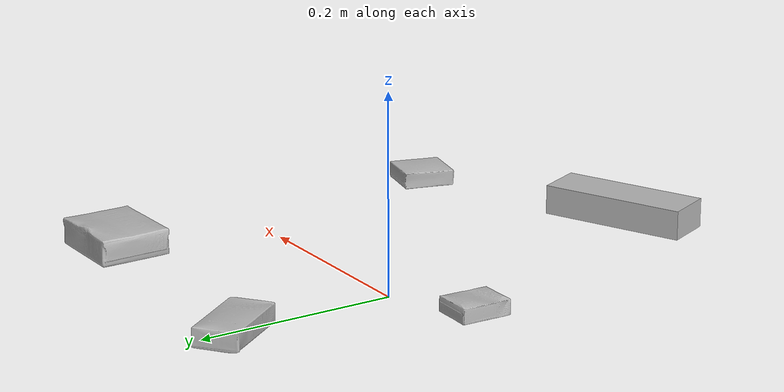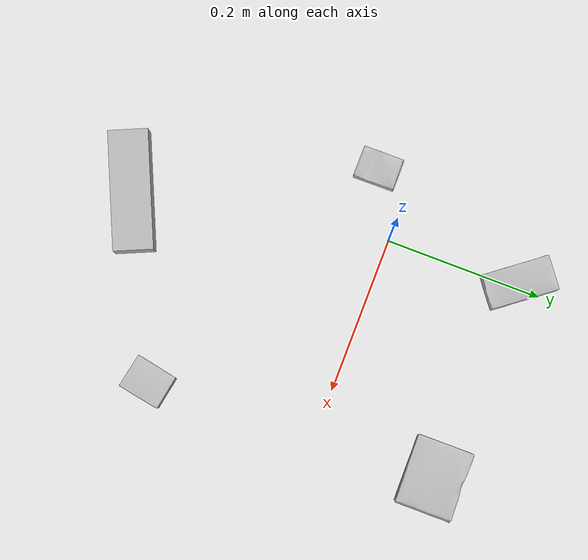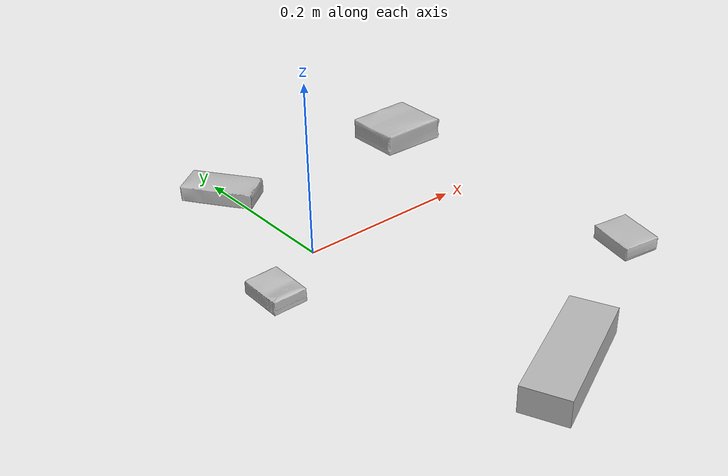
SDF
<sdf version="1.4">
  <world name="default">
    <light name="light1" type="point">
      <pose>0 0 1 0 0 0</pose>
      <diffuse>3 3 3 1</diffuse>
      <specular>3 3 3 1</specular>
    </light>
    <light name="light2" type="point">
      <pose>0 0.5 2 0 0 0</pose>
      <diffuse>1 1 1 1</diffuse>
      <specular>1 1 1 1</specular>
    </light>
    <light name="light3" type="point">
      <pose>0 0.5 2 0 0 0</pose>
      <diffuse>3 3 3 1</diffuse>
      <specular>3 3 3 1</specular>
    </light>
    <scene>
      <ambient>0.7 0.7 0.7</ambient>
    </scene>
    <model name="box1">
      <link name="link_box1">
        <collision name="default">
          <geometry>
            <mesh>
              <uri>model://sugar_box/collision_meshes/collision.obj</uri>
              <scale>0.5 0.5 0.5</scale>
            </mesh>
          </geometry>
          <surface>
            <friction>
              <ode>
                <mu>0.5</mu>
                <mu2>0.5</mu2>
              </ode>
            </friction>
          <contact>
        <ode>
            <max_vel>0</max_vel>
            <min_depth>0.0001</min_depth>
            <kp>1e8</kp>
        </ode>
    </contact></surface>
        </collision>
        <visual name="default">
          <geometry>
            <mesh>
              <uri>model://sugar_box/visual_meshes/visual.dae</uri>
              <scale>0.5 0.5 0.5</scale>
            </mesh>
          </geometry>
        </visual>
        <inertial>
          <mass>0.050072960555553436</mass>
          <pose>0.0005171863595023751 1.924554817378521e-05 -0.00018182402709499002 -0.0004046260967901466 0.0010506635218491861 0.0026153785561980193</pose>
          <inertia>
            <ixx>1.0430162e-05</ixx>
            <iyy>3.371243e-05</iyy>
            <izz>4.0357794e-05</izz>
            <ixy>0</ixy>
            <ixz>0</ixz>
            <iyz>0</iyz>
          </inertia>
        </inertial>
      </link>
      <pose>-0.006969050504267216 0.16969802975654602 0.011399305425584316 0.0007758052306053004 -0.023432875628546707 2.2164328779275015</pose>
    </model>
    <model name="box2">
      <link name="link_box2">
        <collision name="default">
          <geometry>
            <mesh>
              <uri>model://pudding_box/collision_meshes/collision.obj</uri>
              <scale>0.5 0.5 0.5</scale>
            </mesh>
          </geometry>
          <surface>
            <friction>
              <ode>
                <mu>0.5</mu>
                <mu2>0.5</mu2>
              </ode>
            </friction>
          <contact>
        <ode>
            <max_vel>0</max_vel>
            <min_depth>0.0001</min_depth>
            <kp>1e8</kp>
        </ode>
    </contact></surface>
        </collision>
        <visual name="default">
          <geometry>
            <mesh>
              <uri>model://pudding_box/visual_meshes/visual.dae</uri>
              <scale>0.5 0.5 0.5</scale>
            </mesh>
          </geometry>
        </visual>
        <inertial>
          <mass>0.026034390553832054</mass>
          <pose>0.00024474109522998333 0.00040339428232982755 -0.0002594413817860186 0.005213101355963405 -0.006603798228586091 0.020079817710543634</pose>
          <inertia>
            <ixx>7.3576343e-06</ixx>
            <iyy>4.9502682e-06</iyy>
            <izz>1.086547e-05</izz>
            <ixy>0</ixy>
            <ixz>0</ixz>
            <iyz>0</iyz>
          </inertia>
        </inertial>
      </link>
      <pose>0.2693932354450226 -0.21523721516132355 0.00986290443688631 0.022348449513251375 -0.011391768472782627 -0.18806427980616142</pose>
    </model>
    <model name="box3">
      <link name="link_box3">
        <collision name="default">
          <geometry>
            <mesh>
              <uri>model://jenga/collision_meshes/collision.obj</uri>
              <scale>1.0 1.0 1.0</scale>
            </mesh>
          </geometry>
          <surface>
            <friction>
              <ode>
                <mu>0.5</mu>
                <mu2>0.5</mu2>
              </ode>
            </friction>
          <contact>
        <ode>
            <max_vel>0</max_vel>
            <min_depth>0.0001</min_depth>
            <kp>1e8</kp>
        </ode>
    </contact></surface>
        </collision>
        <visual name="default">
          <geometry>
            <mesh>
              <uri>model://jenga/visual_meshes/visual.dae</uri>
              <scale>1.0 1.0 1.0</scale>
            </mesh>
          </geometry>
        </visual>
        <inertial>
          <mass>0.2076648771762848</mass>
          <pose>-2.502856091268768e-07 -0.00010250010382151231 -4.0923405322246253e-05 0.0 -7.34215461761844e-07 0.0</pose>
          <inertia>
            <ixx>5.746591e-05</ixx>
            <iyy>0.00038938745</iyy>
            <izz>0.0004157042</izz>
            <ixy>0</ixy>
            <ixz>0</ixz>
            <iyz>0</iyz>
          </inertia>
        </inertial>
      </link>
      <pose>0.05658705160021782 -0.31885382533073425 0.014999995939433575 1.0384344731754198e-08 -4.180424196949236e-09 0.4154113091957538</pose>
    </model>
    <model name="box4">
      <link name="link_box4">
        <collision name="default">
          <geometry>
            <mesh>
              <uri>model://gelatin_box/collision_meshes/collision.obj</uri>
              <scale>1.0 1.0 1.0</scale>
            </mesh>
          </geometry>
          <surface>
            <friction>
              <ode>
                <mu>0.5</mu>
                <mu2>0.5</mu2>
              </ode>
            </friction>
          <contact>
        <ode>
            <max_vel>0</max_vel>
            <min_depth>0.0001</min_depth>
            <kp>1e8</kp>
        </ode>
    </contact></surface>
        </collision>
        <visual name="default">
          <geometry>
            <mesh>
              <uri>model://gelatin_box/visual_meshes/visual.dae</uri>
              <scale>1.0 1.0 1.0</scale>
            </mesh>
          </geometry>
        </visual>
        <inertial>
          <mass>0.09577830880880356</mass>
          <pose>0.000431961816502735 0.00011156871187267825 -0.0003640321083366871 -0.0010503719862657887 -0.004755821487046037 0.01644055388468454</pose>
          <inertia>
            <ixx>6.761167e-05</ixx>
            <iyy>4.8294667e-05</iyy>
            <izz>0.00010292002</izz>
            <ixy>0</ixy>
            <ixz>0</ixz>
            <iyz>0</iyz>
          </inertia>
        </inertial>
      </link>
      <pose>0.2551940977573395 0.15403097867965698 0.015168317593634129 0.00559712188856593 -0.00730415093913013 1.5710893092802751</pose>
    </model>
    <model name="box5">
      <link name="link_box5">
        <collision name="default">
          <geometry>
            <mesh>
              <uri>model://cracker_box/collision_meshes/collision.obj</uri>
              <scale>0.25 0.25 0.25</scale>
            </mesh>
          </geometry>
          <surface>
            <friction>
              <ode>
                <mu>0.5</mu>
                <mu2>0.5</mu2>
              </ode>
            </friction>
          <contact>
        <ode>
            <max_vel>0</max_vel>
            <min_depth>0.0001</min_depth>
            <kp>1e8</kp>
        </ode>
    </contact></surface>
        </collision>
        <visual name="default">
          <geometry>
            <mesh>
              <uri>model://cracker_box/visual_meshes/visual.dae</uri>
              <scale>0.25 0.25 0.25</scale>
            </mesh>
          </geometry>
        </visual>
        <inertial>
          <mass>0.019404999911785126</mass>
          <pose>0.00023660343140363693 6.358561950037256e-05 -0.00042573839891701937 -0.00031620745436260704 -0.011106489600575076 0.0025467952338677235</pose>
          <inertia>
            <ixx>3.084854e-06</ixx>
            <iyy>5.093699e-06</iyy>
            <izz>7.269177e-06</izz>
            <ixy>0</ixy>
            <ixz>0</ixz>
            <iyz>0</iyz>
          </inertia>
        </inertial>
      </link>
      <pose>-0.07952244579792023 -0.04305410012602806 0.009120450355112553 -0.011788009248424308 -0.007367168568643421 1.5711614351769916</pose>
    </model>
  <physics type="ode">
      <max_contacts>50</max_contacts>
      <ode>
        <solver>
          <type>quick</type>
          <iters>75</iters>
        </solver>
        <constraints>
          <contact_max_correcting_vel>0</contact_max_correcting_vel>
          <contact_surface_layer>0</contact_surface_layer>
        </constraints>
      </ode>
    </physics></world>
</sdf>
